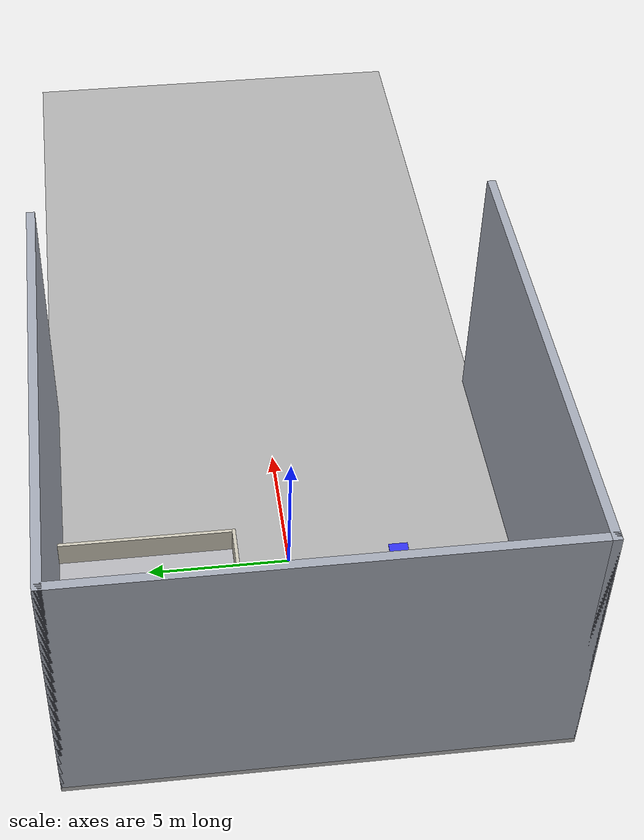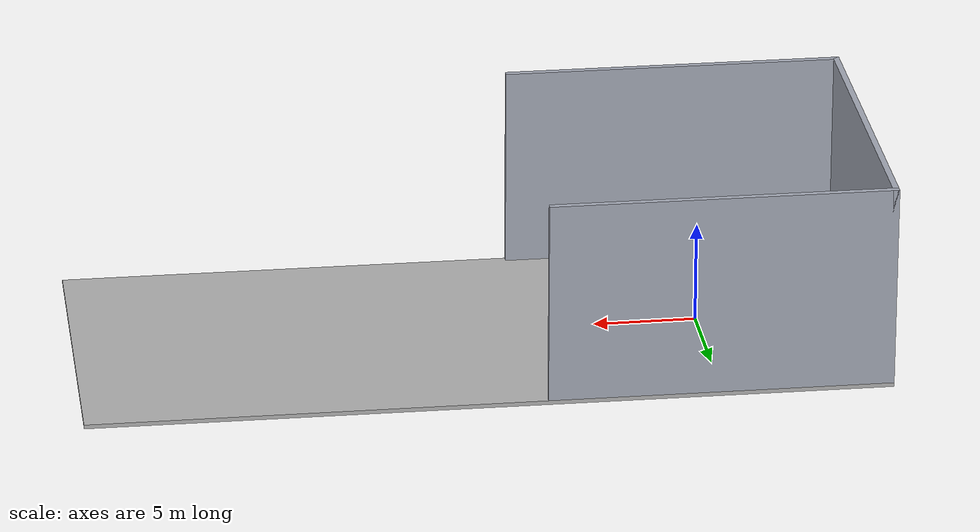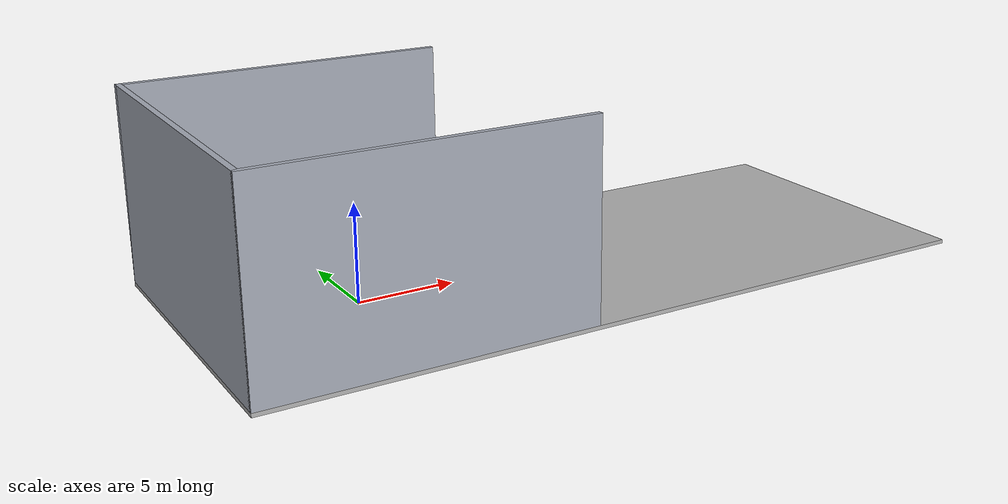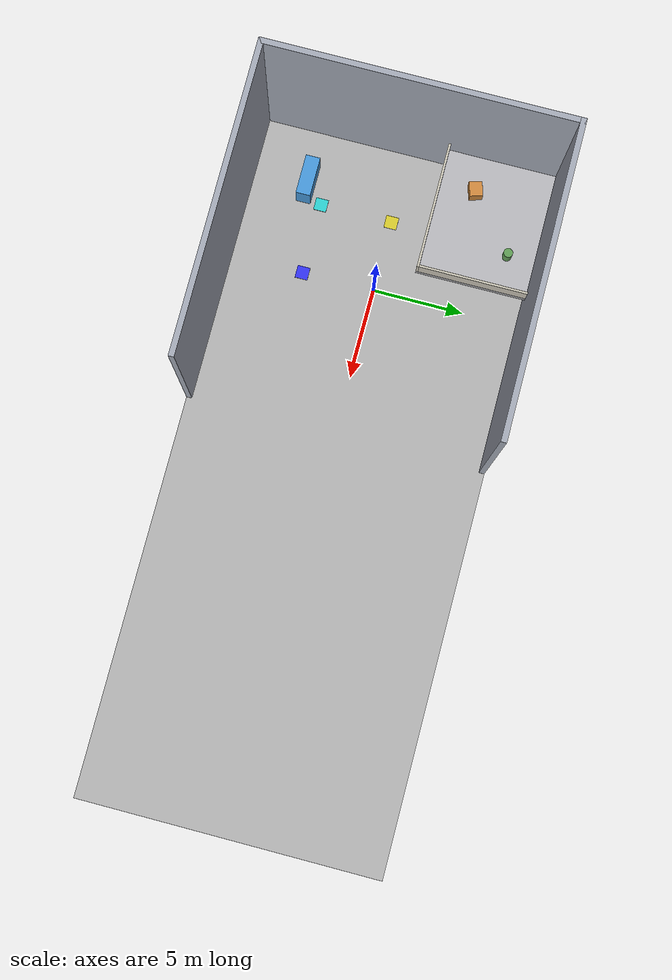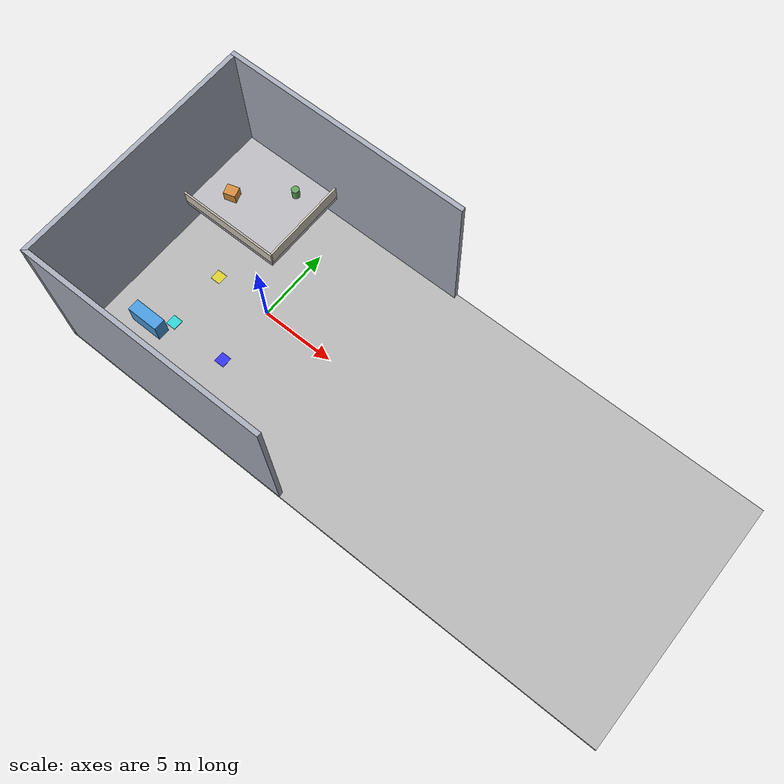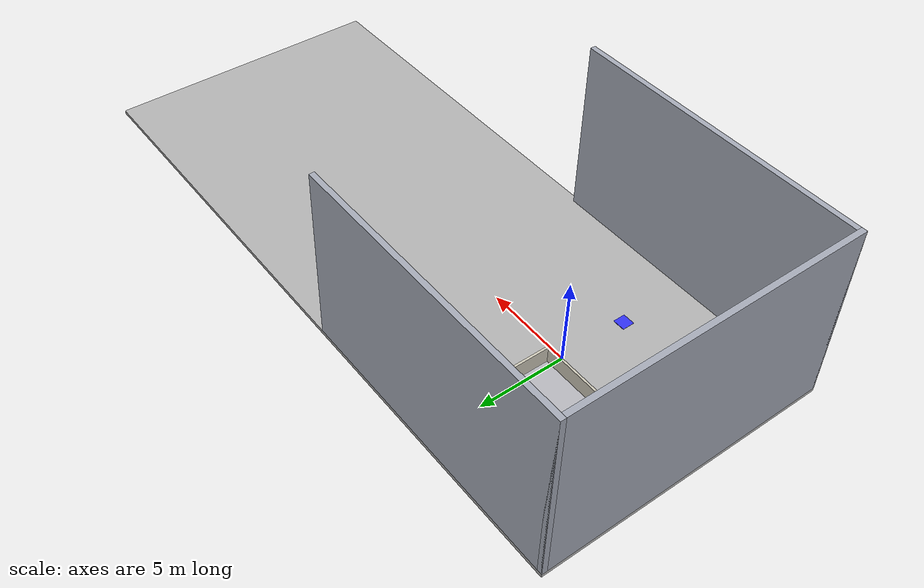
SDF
<sdf version="1.9">
 <world name="single_agent_search_room">
  <model name="ground">
   <static>true</static>
   <link name="link">
    <collision name="collision"><geometry><box><size>38.6 16.6 0.2</size></box></geometry></collision>
    <visual name="visual">
     <geometry><box><size>38.6 16.6 0.2</size></box></geometry>
     <material><ambient>0.60 0.60 0.60 1</ambient><diffuse>0.70 0.70 0.70 1</diffuse></material>
    </visual>
   </link>
   <pose>11 0 -0.1 0 0 0</pose>
  </model>
  <model name="wall_A_south">
   <static>true</static>
   <link name="link">
    <collision name="collision"><geometry><box><size>16.6 0.3 10.0</size></box></geometry></collision>
    <visual name="visual">
     <geometry><box><size>16.6 0.3 10.0</size></box></geometry>
     <material><ambient>0.55 0.57 0.62 1</ambient><diffuse>0.65 0.67 0.72 1</diffuse></material>
    </visual>
   </link>
   <pose>0 -8.15 5.0 0 0 0</pose>
  </model>
  <model name="wall_A_north">
   <static>true</static>
   <link name="link">
    <collision name="collision"><geometry><box><size>16.6 0.3 10.0</size></box></geometry></collision>
    <visual name="visual">
     <geometry><box><size>16.6 0.3 10.0</size></box></geometry>
     <material><ambient>0.55 0.57 0.62 1</ambient><diffuse>0.65 0.67 0.72 1</diffuse></material>
    </visual>
   </link>
   <pose>0 8.15 5.0 0 0 0</pose>
  </model>
  <model name="wall_A_west">
   <static>true</static>
   <link name="link">
    <collision name="collision"><geometry><box><size>0.3 16.6 10.0</size></box></geometry></collision>
    <visual name="visual">
     <geometry><box><size>0.3 16.6 10.0</size></box></geometry>
     <material><ambient>0.55 0.57 0.62 1</ambient><diffuse>0.65 0.67 0.72 1</diffuse></material>
    </visual>
   </link>
   <pose>-8.15 0 5.0 0 0 0</pose>
  </model>
  <model name="crate_A1">
   <static>true</static>
   <link name="link">
    <collision name="collision"><geometry><box><size>1.8 1.4 2.0</size></box></geometry></collision>
    <visual name="visual">
     <geometry><box><size>1.8 1.4 2.0</size></box></geometry>
     <material><ambient>0.80 0.55 0.18 1</ambient><diffuse>0.88 0.62 0.24 1</diffuse></material>
    </visual>
   </link>
   <pose>-5.0 4.0 1.0 0 0 0.4</pose>
  </model>
  <model name="crate_A2">
   <static>true</static>
   <link name="link">
    <collision name="collision"><geometry><box><size>2.2 0.8 1.4</size></box></geometry></collision>
    <visual name="visual">
     <geometry><box><size>2.2 0.8 1.4</size></box></geometry>
     <material><ambient>0.22 0.52 0.78 1</ambient><diffuse>0.28 0.60 0.86 1</diffuse></material>
    </visual>
   </link>
   <pose>-5.0 -5.0 0.7 0 0 0</pose>
  </model>
  <model name="flow_A_sw">
   <static>true</static>
   <link name="link">
    <visual name="visual">
     <geometry><box><size>0.7 0.7 0.02</size></box></geometry>
     <material><ambient>0.12 0.72 0.72 1</ambient><diffuse>0.18 0.82 0.82 1</diffuse></material>
    </visual>
    <collision name="collision"><geometry><box><size>0.7 0.7 0.02</size></box></geometry></collision>
   </link>
   <pose>-4 -4 0.01 0 0 0</pose>
  </model>
  <model name="flow_A_s">
   <static>true</static>
   <link name="link">
    <visual name="visual">
     <geometry><box><size>0.7 0.7 0.02</size></box></geometry>
     <material><ambient>0.15 0.15 0.85 1</ambient><diffuse>0.20 0.20 0.95 1</diffuse></material>
    </visual>
    <collision name="collision"><geometry><box><size>0.7 0.7 0.02</size></box></geometry></collision>
   </link>
   <pose>0 -4 0.01 0 0 0</pose>
  </model>
  <model name="flow_A_w">
   <static>true</static>
   <link name="link">
    <visual name="visual">
     <geometry><box><size>0.7 0.7 0.02</size></box></geometry>
     <material><ambient>0.75 0.70 0.12 1</ambient><diffuse>0.85 0.80 0.18 1</diffuse></material>
    </visual>
    <collision name="collision"><geometry><box><size>0.7 0.7 0.02</size></box></geometry></collision>
   </link>
   <pose>-4 0 0.01 0 0 0</pose>
  </model>
  <model name="flow_A_nw">
   <static>true</static>
   <link name="link">
    <visual name="visual">
     <geometry><box><size>0.7 0.7 0.02</size></box></geometry>
     <material><ambient>0.12 0.70 0.78 1</ambient><diffuse>0.18 0.80 0.88 1</diffuse></material>
    </visual>
    <collision name="collision"><geometry><box><size>0.7 0.7 0.02</size></box></geometry></collision>
   </link>
   <pose>-4 4 0.01 0 0 0</pose>
  </model>
  <model name="mezz_slab">
   <static>true</static>
   <link name="link">
    <collision name="collision"><geometry><box><size>7.0 6.0 0.3</size></box></geometry></collision>
    <visual name="visual">
     <geometry><box><size>7.0 6.0 0.3</size></box></geometry>
     <material><ambient>0.62 0.62 0.64 1</ambient><diffuse>0.72 0.72 0.74 1</diffuse></material>
    </visual>
   </link>
   <pose>-4.5 5.0 2.15 0 0 0</pose>
  </model>
  <model name="mezz_col_sw">
   <static>true</static>
   <link name="link">
    <collision name="collision"><geometry><box><size>0.4 0.4 2.0</size></box></geometry></collision>
    <visual name="visual">
     <geometry><box><size>0.4 0.4 2.0</size></box></geometry>
     <material><ambient>0.42 0.38 0.32 1</ambient><diffuse>0.52 0.48 0.40 1</diffuse></material>
    </visual>
   </link>
   <pose>-6.5 3.3 1.0 0 0 0</pose>
  </model>
  <model name="mezz_col_se">
   <static>true</static>
   <link name="link">
    <collision name="collision"><geometry><box><size>0.4 0.4 2.0</size></box></geometry></collision>
    <visual name="visual">
     <geometry><box><size>0.4 0.4 2.0</size></box></geometry>
     <material><ambient>0.42 0.38 0.32 1</ambient><diffuse>0.52 0.48 0.40 1</diffuse></material>
    </visual>
   </link>
   <pose>-2.5 3.3 1.0 0 0 0</pose>
  </model>
  <model name="mezz_col_nw">
   <static>true</static>
   <link name="link">
    <collision name="collision"><geometry><box><size>0.4 0.4 2.0</size></box></geometry></collision>
    <visual name="visual">
     <geometry><box><size>0.4 0.4 2.0</size></box></geometry>
     <material><ambient>0.42 0.38 0.32 1</ambient><diffuse>0.52 0.48 0.40 1</diffuse></material>
    </visual>
   </link>
   <pose>-6.5 6.7 1.0 0 0 0</pose>
  </model>
  <model name="mezz_col_ne">
   <static>true</static>
   <link name="link">
    <collision name="collision"><geometry><box><size>0.4 0.4 2.0</size></box></geometry></collision>
    <visual name="visual">
     <geometry><box><size>0.4 0.4 2.0</size></box></geometry>
     <material><ambient>0.42 0.38 0.32 1</ambient><diffuse>0.52 0.48 0.40 1</diffuse></material>
    </visual>
   </link>
   <pose>-2.5 6.7 1.0 0 0 0</pose>
  </model>
  <model name="mezz_rail_south">
   <static>true</static>
   <link name="link">
    <collision name="collision"><geometry><box><size>7.0 0.12 0.9</size></box></geometry></collision>
    <visual name="visual">
     <geometry><box><size>7.0 0.12 0.9</size></box></geometry>
     <material><ambient>0.70 0.68 0.64 1</ambient><diffuse>0.80 0.78 0.72 1</diffuse></material>
    </visual>
   </link>
   <pose>-4.5 2.06 2.75 0 0 0</pose>
  </model>
  <model name="mezz_rail_east">
   <static>true</static>
   <link name="link">
    <collision name="collision"><geometry><box><size>0.12 5.9 0.9</size></box></geometry></collision>
    <visual name="visual">
     <geometry><box><size>0.12 5.9 0.9</size></box></geometry>
     <material><ambient>0.70 0.68 0.64 1</ambient><diffuse>0.80 0.78 0.72 1</diffuse></material>
    </visual>
   </link>
   <pose>-1.06 5.05 2.75 0 0 0</pose>
  </model>
  <model name="mezz_box">
   <static>true</static>
   <link name="link">
    <collision name="collision"><geometry><box><size>0.8 0.7 0.7</size></box></geometry></collision>
    <visual name="visual">
     <geometry><box><size>0.8 0.7 0.7</size></box></geometry>
     <material><ambient>0.72 0.46 0.18 1</ambient><diffuse>0.82 0.54 0.24 1</diffuse></material>
    </visual>
   </link>
   <pose>-6.0 4.0 2.65 0 0 0.3</pose>
  </model>
  <model name="mezz_barrel">
   <static>true</static>
   <link name="link">
    <collision name="collision">
     <geometry><cylinder><radius>0.25</radius><length>0.70</length></cylinder></geometry>
    </collision>
    <visual name="visual">
     <geometry><cylinder><radius>0.25</radius><length>0.70</length></cylinder></geometry>
     <material><ambient>0.30 0.52 0.28 1</ambient><diffuse>0.38 0.62 0.34 1</diffuse></material>
    </visual>
   </link>
   <pose>-3.0 6.5 2.65 0 0 0</pose>
  </model>
 </world>
</sdf>
